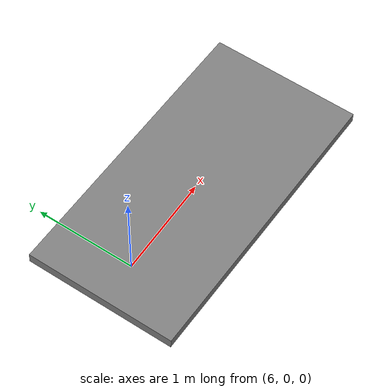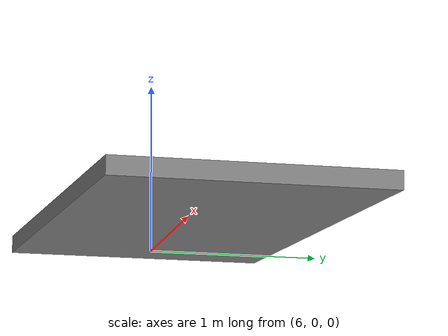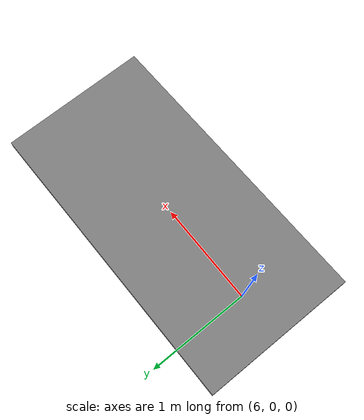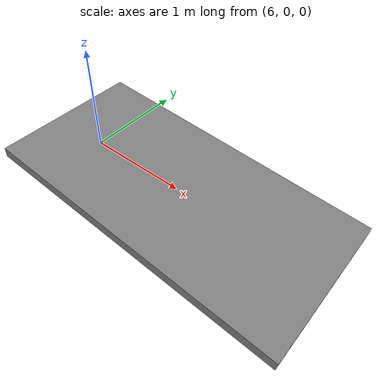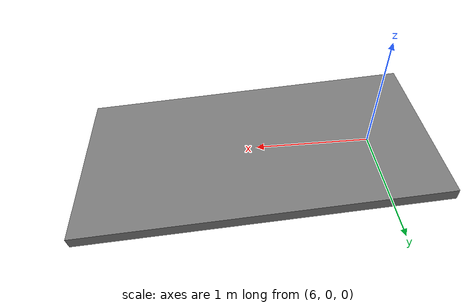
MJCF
<mujoco model="go2 scene">
  <statistic center="0 0 0.1" extent="0.8" />

  <visual>
    <headlight diffuse="0.6 0.6 0.6" ambient="0.3 0.3 0.3" specular="0 0 0" />
    <rgba haze="0.15 0.25 0.35 1" />
    <global azimuth="-130" elevation="-20" />
  </visual>

  <asset>
    <texture type="skybox" builtin="gradient" rgb1="0.3 0.5 0.7" rgb2="0 0 0" width="512" height="3072" />

  </asset>

  <worldbody>

  <geom pos="7.02 0 0" type="box" size="1.5 0.75 0.05" quat="-3.6709683301207837e-06 0.034892915673050744 1.281688359217563e-07 0.9993910568052632" /></worldbody>
</mujoco>
